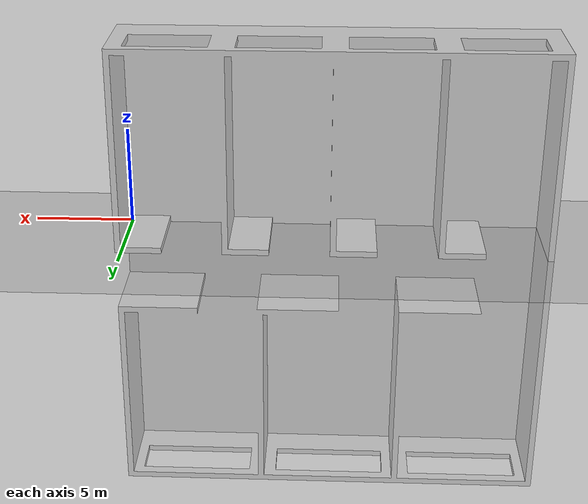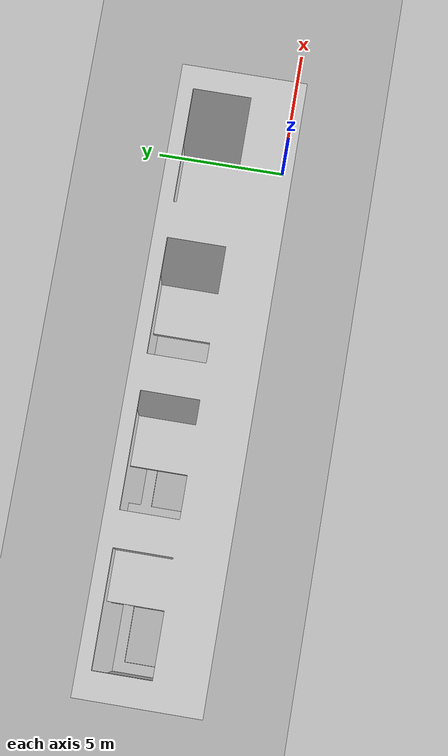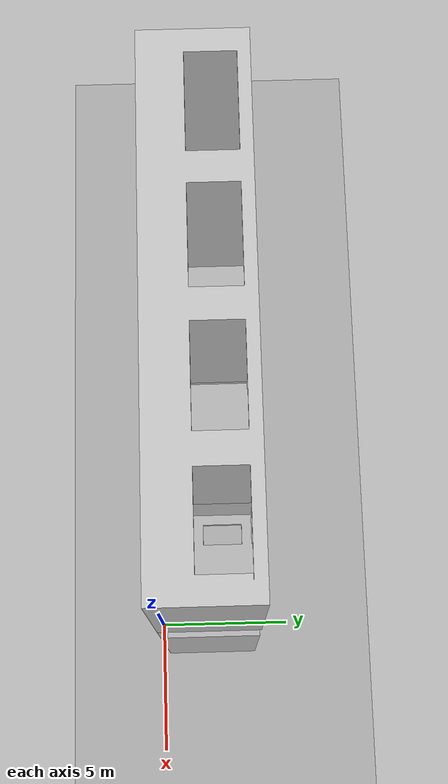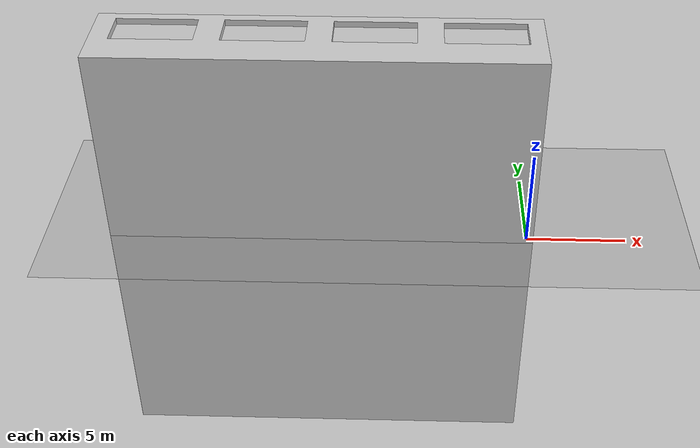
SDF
<?xml version="1.0"?>
<sdf version="1.6">
  <world name="office">
    <physics name="1ms" type="ignored">
      <max_step_size>0.001</max_step_size>
      <real_time_factor>1.0</real_time_factor>
    </physics>

    <plugin filename="ignition-gazebo-contact-system" name="gz::sim::systems::Contact" />
    <plugin filename="ignition-gazebo-imu-system" name="gz::sim::systems::Imu" />
    <plugin filename="ignition-gazebo-physics-system" name="gz::sim::systems::Physics" />
    <plugin filename="ignition-gazebo-scene-broadcaster-system"
      name="gz::sim::systems::SceneBroadcaster" />
    <plugin filename="ignition-gazebo-sensors-system" name="gz::sim::systems::Sensors" />
    <plugin filename="ignition-gazebo-user-commands-system" name="gz::sim::systems::UserCommands" />

    <scene>
      <ambient>0.8 0.8 0.8 1</ambient>
      <background>0.2 0.2 0.2 1</background>
      <grid>0</grid>
      <shadows>1</shadows>
    </scene>

    <light name="sun" type="directional">
      <cast_shadows>1</cast_shadows>
      <pose>0 0 10 0 -0 0</pose>
      <diffuse>0.8 0.8 0.8 1</diffuse>
      <specular>0.2 0.2 0.2 1</specular>
      <attenuation>
        <range>1000</range>
        <constant>0.9</constant>
        <linear>0.01</linear>
        <quadratic>0.001</quadratic>
      </attenuation>
      <direction>-0.5 0.1 -0.9</direction>
    </light>

    <model name="ground_plane">
      <static>true</static>
      <link name="link">
        <collision name="collision">
          <geometry>
            <plane>
              <normal>0 0 1</normal>
              <size>100 100</size>
            </plane>
          </geometry>
        </collision>
        <visual name="visual">
          <geometry>
            <plane>
              <normal>0 0 1</normal>
              <size>100 100</size>
            </plane>
          </geometry>
          <material>
            <ambient>0.5 0.5 0.5 1</ambient>
            <diffuse>0.6 0.6 0.6 1</diffuse>
            <specular>0.1 0.1 0.1 1</specular>
          </material>
        </visual>
      </link>
    </model>

    <include>
      <uri>model://office</uri>
      <pose>0 0 0 0 0 0</pose>
    </include>
  </world>
</sdf>

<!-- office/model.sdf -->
<sdf version="1.6">
  <model name="office">
    <static>true</static>
    <link name="body">
      <visual name="visual">
        <geometry>
          <mesh>
            <uri>model://office/meshes/office.stl</uri>
            <scale>0.001 0.001 0.001</scale>
          </mesh>
        </geometry>
        <material>
          <ambient>0.7 0.7 0.7 1</ambient>
          <diffuse>0.8 0.8 0.8 1</diffuse>
          <specular>0.1 0.1 0.1 1</specular>
        </material>
      </visual>
      <collision name="collision">
        <geometry>
          <mesh>
            <uri>model://office/meshes/office.stl</uri>
            <scale>0.001 0.001 0.001</scale>
          </mesh>
        </geometry>
      </collision>
    </link>
  </model>
</sdf>
